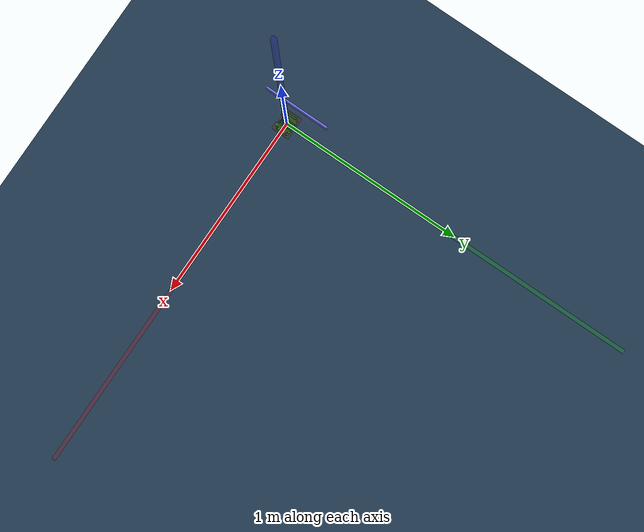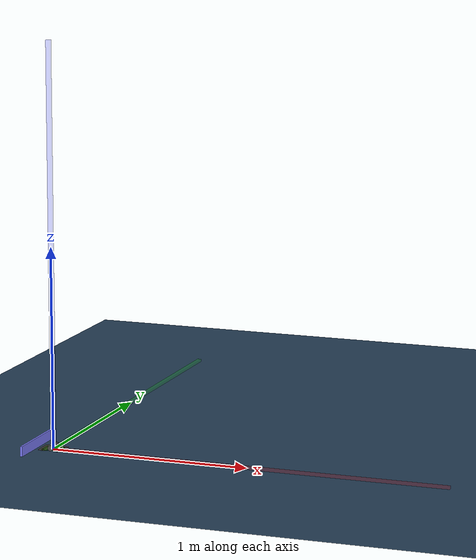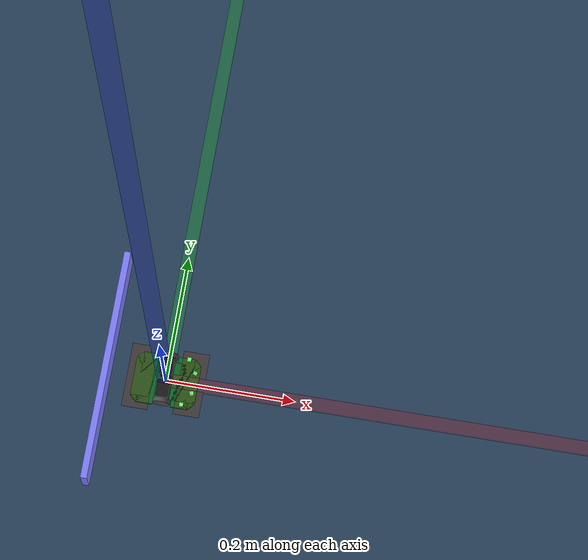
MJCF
<mujoco>
    <default>
        <camera mode="track"/>
    </default>

    <compiler angle="degree" coordinate="local" inertiafromgeom="true" />
    <option integrator="RK4" timestep="0.0001" />

    <asset>
    <texture type="skybox" builtin="gradient" rgb1="0.3 0.5 0.7" rgb2="0 0 0" width="512" height="3072"/>
    <texture type="2d" name="groundplane" builtin="checker" mark="edge" rgb1="0.2 0.3 0.4" rgb2="0.1 0.2 0.3"
      markrgb="0.8 0.8 0.8" width="300" height="300"/>
    <material name="groundplane" texture="groundplane" texuniform="true" texrepeat="5 5" reflectance="0.2"/>
    </asset>

    <worldbody>

        <geom type="plane" size="30 30 .01" material="groundplane"/>
      <light pos="0 0 1.5" dir="0 0 -1" directional="true"/>

        <body pos="0 0 1.8e-3">
            <freejoint />
            <body name="torso" >
            <geom name="mein_body1" type="box" size="0.05 0.03 0.0016" friction="0.0 0.0 0.0" rgba="0.05 0.4 0.15 1" pos="0 0 0.001" />
            <geom name="mein_body_chip1" type="box" size="0.00707 0.00707 0.0016" friction="0.0 0.0 0.0" rgba="0.05 0.4 0.15 1" pos="0.04 0.03 0.001" euler="0 0 45" />
            <geom name="mein_body_chip2" type="box" size="0.00707 0.00707 0.0016" friction="0.0 0.0 0.0" rgba="0.05 0.4 0.15 1" pos="0.04 -0.03 0.001" euler="0 0 45" />
            <geom name="mein_body_chip3" type="box" size="0.00707 0.00707 0.0016" friction="0.0 0.0 0.0" rgba="0.05 0.4 0.15 1" pos="-0.04 0.03 0.001" euler="0 0 45" />
            <geom name="mein_body_chip4" type="box" size="0.00707 0.00707 0.0016" friction="0.0 0.0 0.0" rgba="0.05 0.4 0.15 1" pos="-0.04 -0.03 0.001" euler="0 0 45" />
            <geom name="mein_body4" type="box" size="0.013 0.04 0.0016" friction="0.0 0.0 0.0" rgba="0.05 0.4 0.15 1" pos="-0.027 0 0.001"/>
            <geom name="mein_body5" type="box" size="0.013 0.04 0.0016" friction="0.0 0.0 0.0" rgba="0.05 0.4 0.15 1" pos="0.027 0 0.001"/>
                <site name = "hit_box" type = "box" size = "0.02 0.05 0.0016" pos="0.04 0 0.003" rgba=".5 .2 0 .3"/>
                <site name = "hit_box2" type = "box" size = "0.02 0.05 0.0016" pos="-0.04 0 0.003" rgba=".5 .2 0 .3"/>
                <camera name="camera_name" mode="track" pos="-0.2 0 1" euler="0 -20 -90" fovy="60"/> トラッキングカメラを装着
            </body>

            <site name="sensor_left_front" type="box" size="0.003 0.003 0.003" pos="0.031 0.036 0.01" zaxis="1 0 0.01" rgba=".5 1 .5 1"/>
              <!-- zaxisの３つめ　0.1でちょい上向き -->
            <site name="sensor_left_side" type="box" size="0.003 0.003 0.003" pos="0.043 0.016 0.01" zaxis="0.25 1 0" rgba=".5 1 .5 1"/>
            <site name="sensor_right_front" type="box" size="0.003 0.003 0.003" pos="0.031 -0.036 0.01" zaxis="1 0 0.01" rgba=".5 1 .5 1"/>
            <site name="sensor_right_side" type="box" size="0.003 0.003 0.003" pos="0.043 -0.016 0.01" zaxis="0.25 -1 0" rgba=".5 1 .5 1"/>

             <body name="left wheel" pos="-0.0 0.036 0.0125" zaxis="0 1 0">
                <joint name="left wheel joint" type="hinge" axis="0 0 1" limited="false" damping='3.6e-6' />

                <geom type="cylinder" size="0.0135 0.0035" rgba=".3 .3 0.3 1" mass="0.512"/>
                <site type="box" rgba="1 1 1 1" size=".0006 .0036 .0012" />
            </body>

            <body name="right wheel" pos="-0.0 -0.036 0.0125" zaxis="0 1 0">
                <joint name="right wheel joint" type="hinge" axis="0 0 1" limited="false" damping='3.6e-6' />
                <geom type="cylinder" size="0.0135 0.0035" rgba=".3 .3 0.3 1" mass="0.512"/>
                <site type="box" rgba="1 1 1 1" size=".0006 .0036 .0012" />
            </body>

            <body name="motorbox1" pos="0 -0.018 0.0135" >
                <geom type="box" size="0.01 0.0135 0.01" rgba="0.1 0.1 0.1 1" />
            </body>

            <body name="motorbox2" pos="0 0.018 0.0135">
                <geom type="box" size="0.01 0.0135 0.01" rgba="0.1 0.1 0.1 1" />
            </body>

        </body>
    <site type="box" rgba="1 0 0 0.2" fromto="0 0 0 2 0 0" size="0.01"/>
    <site type="box" rgba="0 1 0 0.2" fromto="0 0 0 0 2 0" size="0.01"/>
    <site type="box" rgba="0 0 1 0.2" fromto="0 0 0 0 0 2" size="0.01"/>

        <body name="maze_wall2ss" pos="-0.09 0 0.025">
                <geom type="box" size="0.005 0.18 0.025" rgba=".5 .5 1 1" />
            </body>

<!-- かべかべかべｎ --><!-- かべかべかべｎ --><!-- かべかべかべｎ --><!-- かべかべかべｎ --><!-- かべかべかべｎ -->

<!-- かべかべかべｎ --><!-- かべかべかべｎ --><!-- かべかべかべｎ --><!-- かべかべかべｎ --><!-- かべかべかべｎ -->

    </worldbody>
    <actuator>
        <motor name="right" joint="right wheel joint" gear="1.8e-3"/>
        <motor name="left" joint="left wheel joint" gear="1.8e-3"/>
    </actuator>

    <sensor>
        <rangefinder name="LF" site="sensor_left_front" cutoff="0.10"/>
        <rangefinder name="LS" site="sensor_left_side" cutoff="0.10"/>
        <rangefinder name="RF" site="sensor_right_front" cutoff="0.10"/>
        <rangefinder name="RS" site="sensor_right_side" cutoff="0.10"/>
        <touch name = "HB" site = "hit_box"/>
        <touch name = "HB2" site = "hit_box2"/>
    </sensor>
</mujoco>
